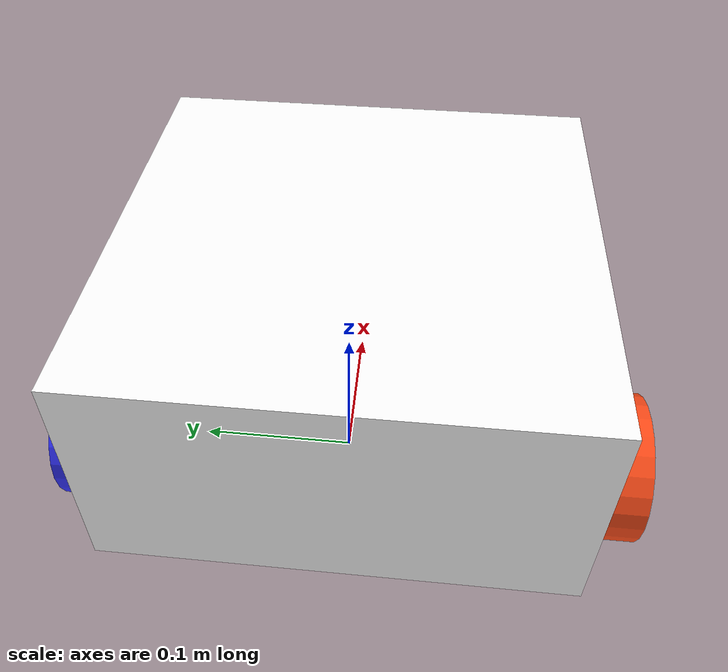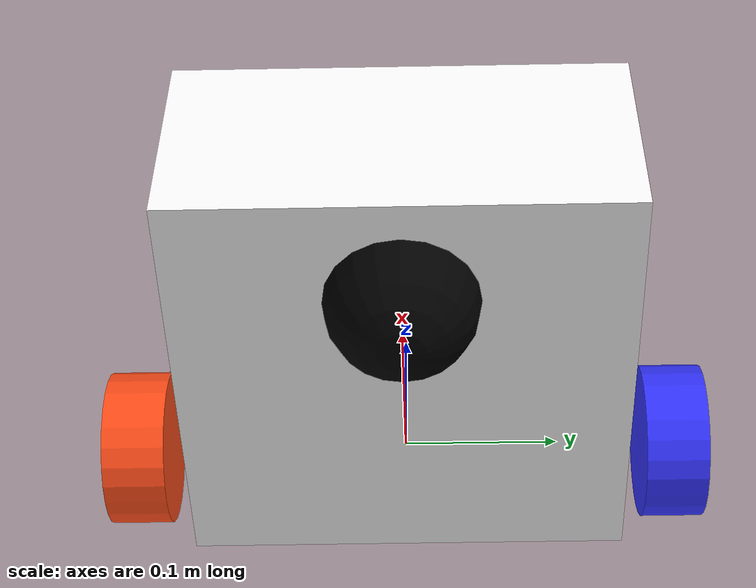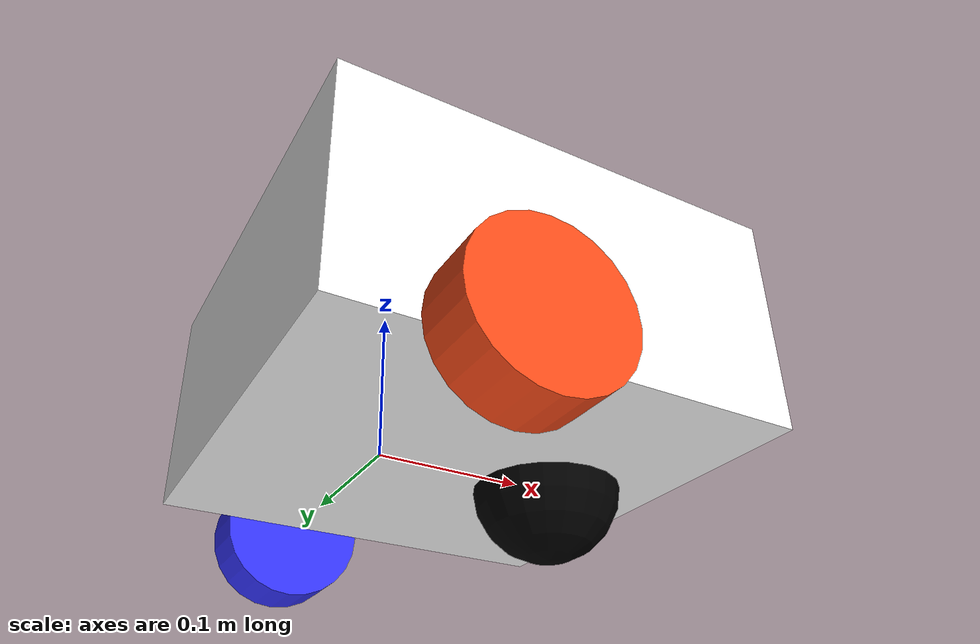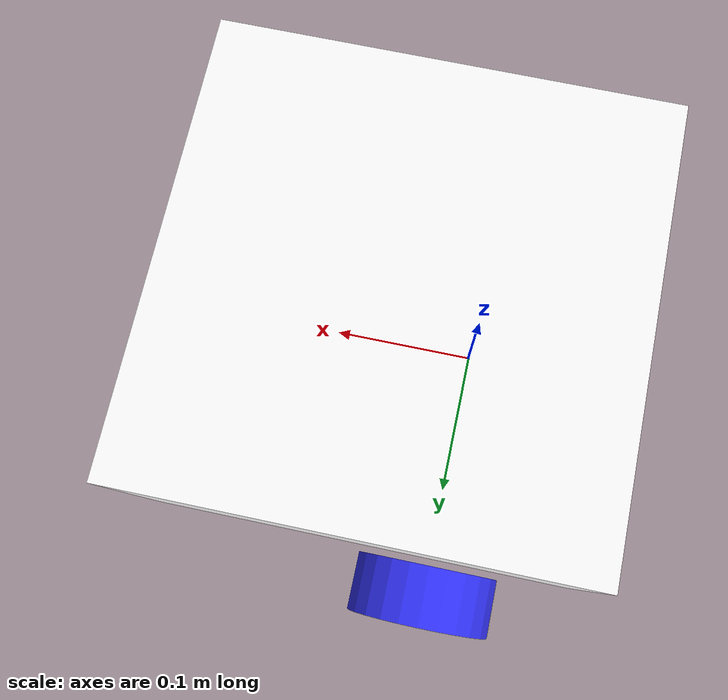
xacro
<?xml version="1.0"?>
<robot xmlns:xacro="http://www.ros.org/wiki/xacro">

<xacro:include filename="inertial_macros.xacro"/>

    <material name="white">
        <color rgba="1 1 1 1" />
    </material>

    <material name="orange">
        <color rgba="1 0.3 0.1 1" />
    </material>

    <material name="blue">
        <color rgba="0.2 0.2 1 1" />
    </material>

    <material name="black">
        <color rgba="0 0 0  1" />
    </material>

    <!-- BASE LINK -->

    <link name="base_link">

    <!-- CHASSIS LINK -->

    </link>

    <joint name="chassis_joint" type="fixed" >
        <parent link="base_link"/>
        <child link="chassis"/>
        <origin xyz="-0.1 0 0"/>
    </joint>

    <link name="chassis">
        <visual>
            <origin xyz="0.15 0 0.075"/>
            <material name="white"/>
            <geometry>
                <box size="0.3 0.3 0.15"/>

            </geometry>
        </visual>
        <collision>
            <origin xyz="0.15 0 0.075"/>
            <material name="white"/>
            <geometry>
                <box size="0.3 0.3 0.15"/>

            </geometry>
        </collision>
        <xacro:inertial_box mass='0.5' x="0.3" y="0.3" z="0.15">
            <origin xyz="0.15 0 0.075" rpy="0 0 0"/>
        </xacro:inertial_box>
    </link>

    <!-- RODA KIRI LINK -->

    <joint name="left_wheel_joint" type="continuous">
        <parent link="base_link"/>
        <child link="left_wheel"/>
        <origin xyz="0 0.175 0" rpy="-${pi/2} 0 0"/>
         <axis xyz="0 0 1"/>
    </joint>

    <link name="left_wheel">
        <visual>
            <material name="blue"/>
            <geometry>
                <cylinder radius="0.05" length="0.04"/>
            </geometry>

        </visual>
        <collision>
            <material name="blue"/>
            <geometry>
                <cylinder radius="0.05" length="0.04"/>
            </geometry>

        </collision>
        <xacro:inertial_cylinder mass="0.1" length="0.04" radius="0.05">
            <origin xyz="0 0 0" ryp="0 0 0"/>
        </xacro:inertial_cylinder>
    </link>

     <!-- RODA KANAN LINK -->

    <joint name="right_wheel_joint" type="continuous">
        <parent link="base_link"/>
        <child link="right_wheel"/>
        <origin xyz="0 -0.175 0" rpy="${pi/2} 0 0"/>
        <axis xyz="0 0 -1"/>
    </joint>

    <link name="right_wheel">
        <visual>
            <material name="orange"/>

            <geometry>
                <cylinder radius="0.05" length="0.04"/>

            </geometry>

        </visual>
        <collision>
            <material name="orange"/>

            <geometry>
                <cylinder radius="0.05" length="0.04"/>

            </geometry>

        </collision>
        <xacro:inertial_cylinder mass="0.1" length="0.04" radius="0.05">
            <origin xyz="0 0 0" rpy="0 0 0"/>
        </xacro:inertial_cylinder>
    </link>

    <!-- CASTER WHEEL -->
     <joint name="caster_joint" type="fixed">
        <parent link="chassis"/>
        <child link="caster"/>
        <origin xyz="0.225 0 0"/>

     </joint>

     <link name="caster">
        <visual>

            <geometry>
                <sphere radius="0.05"/>

            </geometry>
            <material name="black"/>
        </visual>
        <collision>

            <geometry>
                <sphere radius="0.05"/>

            </geometry>
            <material name="black"/>
        </collision>
        <xacro:inertial_sphere mass="0.05" radius="0.05">
            <origin xyz="0 0 0 " rpy="0 0 0"/>
        </xacro:inertial_sphere>

    </link>

</robot>
